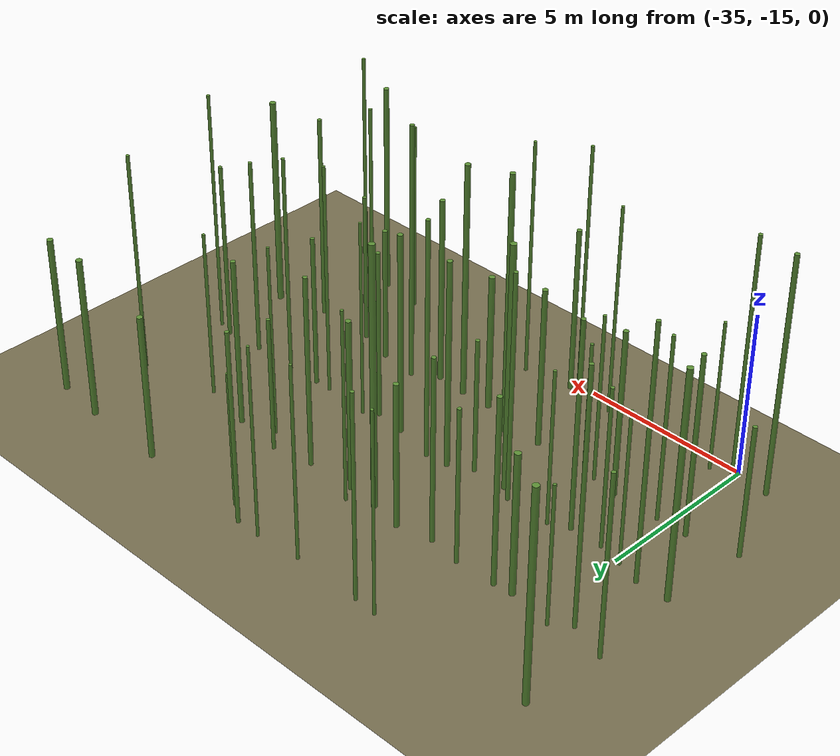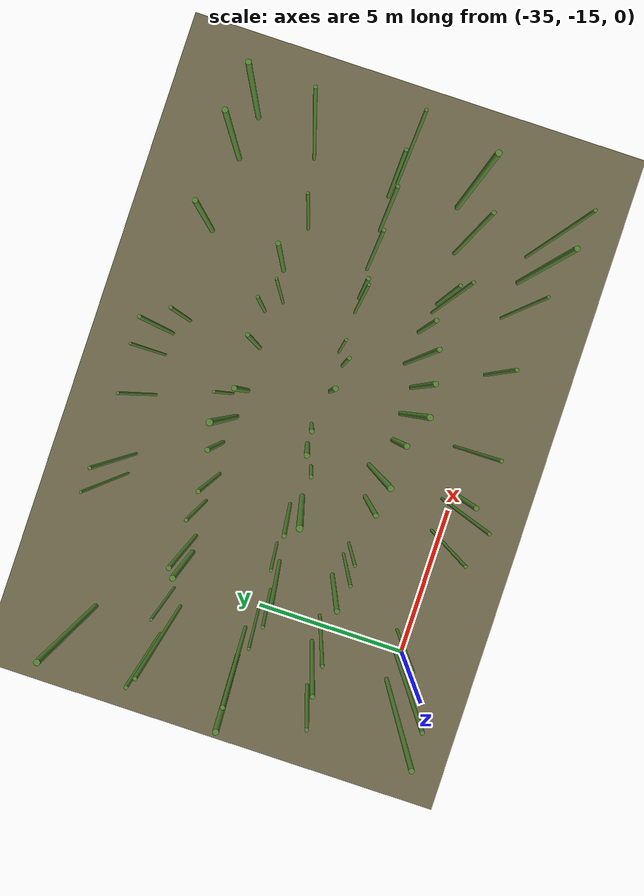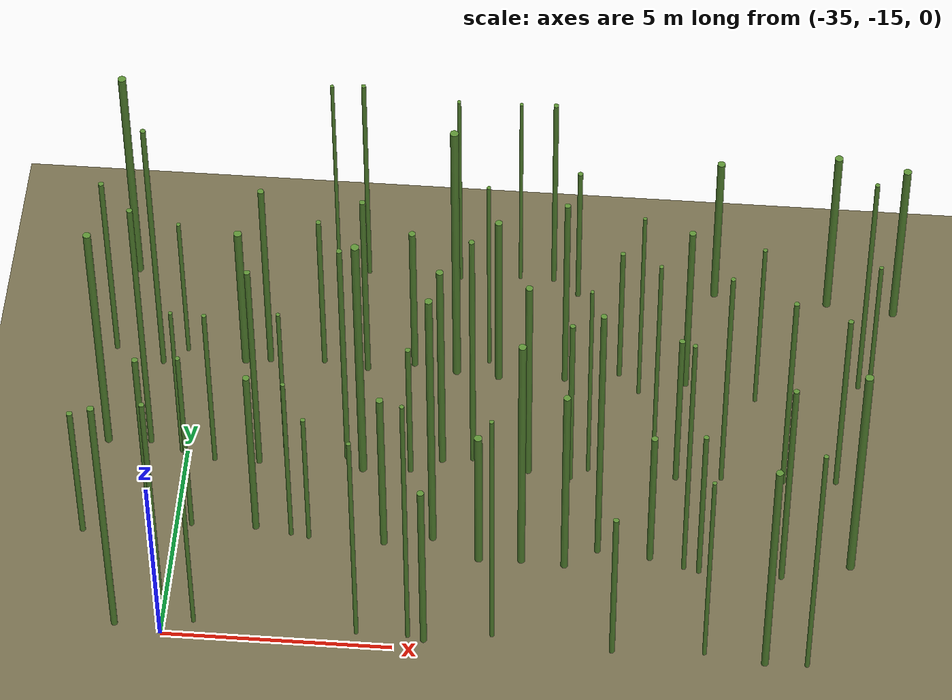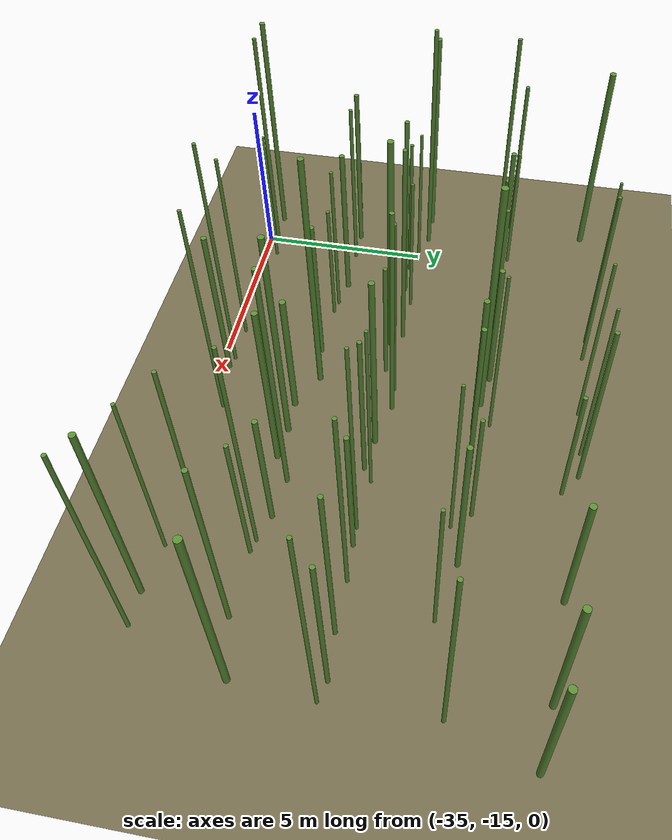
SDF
<sdf version="1.9">
 <world name="bamboo_field">
  <model name="ground_plane">
   <static>true</static>
   <link name="link">
    <collision name="collision">
     <geometry><plane><normal>0 0 1</normal><size>80.0 80.0</size></plane></geometry>
    </collision>
    <visual name="visual">
     <geometry><plane><normal>0 0 1</normal><size>80.0 80.0</size></plane></geometry>
     <material><diffuse>0.45 0.42 0.30 1</diffuse></material>
    </visual>
   </link>
  </model>
  <model name="bamboo_606">
   <static>true</static>
   <pose>-36.02686584645869 -14.805122999809392 3.670938135353289 0 0 0</pose>
   <link name="link">
    <collision name="collision">
     <geometry>
      <cylinder><radius>0.07266682732784249</radius><length>7.341876270706578</length></cylinder>
     </geometry>
    </collision>
    <visual name="visual">
     <geometry>
      <cylinder><radius>0.07266682732784249</radius><length>7.341876270706578</length></cylinder>
     </geometry>
     <material><diffuse>0.35 0.55 0.20 1</diffuse><specular>0.1 0.1 0.1 1</specular></material>
    </visual>
   </link>
  </model>
  <model name="bamboo_607">
   <static>true</static>
   <pose>-34.98482981029579 -14.731076083740685 3.735438843742495 0 0 0</pose>
   <link name="link">
    <collision name="collision">
     <geometry>
      <cylinder><radius>0.05764490038798628</radius><length>7.47087768748499</length></cylinder>
     </geometry>
    </collision>
    <visual name="visual">
     <geometry>
      <cylinder><radius>0.05764490038798628</radius><length>7.47087768748499</length></cylinder>
     </geometry>
     <material><diffuse>0.35 0.55 0.20 1</diffuse><specular>0.1 0.1 0.1 1</specular></material>
    </visual>
   </link>
  </model>
  <model name="bamboo_608">
   <static>true</static>
   <pose>-34.32998675403457 -14.618119244868057 2.3312116448579845 0 0 0</pose>
   <link name="link">
    <collision name="collision">
     <geometry>
      <cylinder><radius>0.04694841535385649</radius><length>4.662423289715969</length></cylinder>
     </geometry>
    </collision>
    <visual name="visual">
     <geometry>
      <cylinder><radius>0.04694841535385649</radius><length>4.662423289715969</length></cylinder>
     </geometry>
     <material><diffuse>0.35 0.55 0.20 1</diffuse><specular>0.1 0.1 0.1 1</specular></material>
    </visual>
   </link>
  </model>
  <model name="bamboo_611">
   <static>true</static>
   <pose>-30.79683528189015 -14.667964637078548 3.2590808497763097 0 0 0</pose>
   <link name="link">
    <collision name="collision">
     <geometry>
      <cylinder><radius>0.0480564570183769</radius><length>6.5181616995526195</length></cylinder>
     </geometry>
    </collision>
    <visual name="visual">
     <geometry>
      <cylinder><radius>0.0480564570183769</radius><length>6.5181616995526195</length></cylinder>
     </geometry>
     <material><diffuse>0.35 0.55 0.20 1</diffuse><specular>0.1 0.1 0.1 1</specular></material>
    </visual>
   </link>
  </model>
  <model name="bamboo_612">
   <static>true</static>
   <pose>-29.68235381993716 -14.674029854904838 3.9164766729691074 0 0 0</pose>
   <link name="link">
    <collision name="collision">
     <geometry>
      <cylinder><radius>0.049001876978814855</radius><length>7.832953345938215</length></cylinder>
     </geometry>
    </collision>
    <visual name="visual">
     <geometry>
      <cylinder><radius>0.049001876978814855</radius><length>7.832953345938215</length></cylinder>
     </geometry>
     <material><diffuse>0.35 0.55 0.20 1</diffuse><specular>0.1 0.1 0.1 1</specular></material>
    </visual>
   </link>
  </model>
  <model name="bamboo_613">
   <static>true</static>
   <pose>-29.334432119723694 -14.754110793406253 2.566909252811281 0 0 0</pose>
   <link name="link">
    <collision name="collision">
     <geometry>
      <cylinder><radius>0.0730872531314579</radius><length>5.133818505622562</length></cylinder>
     </geometry>
    </collision>
    <visual name="visual">
     <geometry>
      <cylinder><radius>0.0730872531314579</radius><length>5.133818505622562</length></cylinder>
     </geometry>
     <material><diffuse>0.35 0.55 0.20 1</diffuse><specular>0.1 0.1 0.1 1</specular></material>
    </visual>
   </link>
  </model>
  <model name="bamboo_614">
   <static>true</static>
   <pose>-27.876758642067685 -14.512321897357557 3.6607271494085616 0 0 0</pose>
   <link name="link">
    <collision name="collision">
     <geometry>
      <cylinder><radius>0.048528339199484814</radius><length>7.321454298817123</length></cylinder>
     </geometry>
    </collision>
    <visual name="visual">
     <geometry>
      <cylinder><radius>0.048528339199484814</radius><length>7.321454298817123</length></cylinder>
     </geometry>
     <material><diffuse>0.35 0.55 0.20 1</diffuse><specular>0.1 0.1 0.1 1</specular></material>
    </visual>
   </link>
  </model>
  <model name="bamboo_617">
   <static>true</static>
   <pose>-25.276530731536806 -14.73544471669724 2.299122387252912 0 0 0</pose>
   <link name="link">
    <collision name="collision">
     <geometry>
      <cylinder><radius>0.06098975063358031</radius><length>4.598244774505824</length></cylinder>
     </geometry>
    </collision>
    <visual name="visual">
     <geometry>
      <cylinder><radius>0.06098975063358031</radius><length>4.598244774505824</length></cylinder>
     </geometry>
     <material><diffuse>0.35 0.55 0.20 1</diffuse><specular>0.1 0.1 0.1 1</specular></material>
    </visual>
   </link>
  </model>
  <model name="bamboo_618">
   <static>true</static>
   <pose>-23.29326298497138 -14.646120890962576 2.9644818702249616 0 0 0</pose>
   <link name="link">
    <collision name="collision">
     <geometry>
      <cylinder><radius>0.04587582032873852</radius><length>5.928963740449923</length></cylinder>
     </geometry>
    </collision>
    <visual name="visual">
     <geometry>
      <cylinder><radius>0.04587582032873852</radius><length>5.928963740449923</length></cylinder>
     </geometry>
     <material><diffuse>0.35 0.55 0.20 1</diffuse><specular>0.1 0.1 0.1 1</specular></material>
    </visual>
   </link>
  </model>
  <model name="bamboo_619">
   <static>true</static>
   <pose>-21.988053501291482 -14.809288931365728 3.2984634702130675 0 0 0</pose>
   <link name="link">
    <collision name="collision">
     <geometry>
      <cylinder><radius>0.07874352115339017</radius><length>6.596926940426135</length></cylinder>
     </geometry>
    </collision>
    <visual name="visual">
     <geometry>
      <cylinder><radius>0.07874352115339017</radius><length>6.596926940426135</length></cylinder>
     </geometry>
     <material><diffuse>0.35 0.55 0.20 1</diffuse><specular>0.1 0.1 0.1 1</specular></material>
    </visual>
   </link>
  </model>
  <model name="bamboo_620">
   <static>true</static>
   <pose>-21.083420239114307 -14.801687599200536 3.6046003920156275 0 0 0</pose>
   <link name="link">
    <collision name="collision">
     <geometry>
      <cylinder><radius>0.05147431281895251</radius><length>7.209200784031255</length></cylinder>
     </geometry>
    </collision>
    <visual name="visual">
     <geometry>
      <cylinder><radius>0.05147431281895251</radius><length>7.209200784031255</length></cylinder>
     </geometry>
     <material><diffuse>0.35 0.55 0.20 1</diffuse><specular>0.1 0.1 0.1 1</specular></material>
    </visual>
   </link>
  </model>
  <model name="bamboo_673">
   <static>true</static>
   <pose>-37.048695280711534 -12.337944657791976 2.0182651991526663 0 0 0</pose>
   <link name="link">
    <collision name="collision">
     <geometry>
      <cylinder><radius>0.06385335352257285</radius><length>4.036530398305333</length></cylinder>
     </geometry>
    </collision>
    <visual name="visual">
     <geometry>
      <cylinder><radius>0.06385335352257285</radius><length>4.036530398305333</length></cylinder>
     </geometry>
     <material><diffuse>0.35 0.55 0.20 1</diffuse><specular>0.1 0.1 0.1 1</specular></material>
    </visual>
   </link>
  </model>
  <model name="bamboo_674">
   <static>true</static>
   <pose>-35.59376764525032 -12.027007989021284 2.7895041592403667 0 0 0</pose>
   <link name="link">
    <collision name="collision">
     <geometry>
      <cylinder><radius>0.06802771793198077</radius><length>5.579008318480733</length></cylinder>
     </geometry>
    </collision>
    <visual name="visual">
     <geometry>
      <cylinder><radius>0.06802771793198077</radius><length>5.579008318480733</length></cylinder>
     </geometry>
     <material><diffuse>0.35 0.55 0.20 1</diffuse><specular>0.1 0.1 0.1 1</specular></material>
    </visual>
   </link>
  </model>
  <model name="bamboo_675">
   <static>true</static>
   <pose>-34.68447371358325 -12.007813681040018 2.844478765507385 0 0 0</pose>
   <link name="link">
    <collision name="collision">
     <geometry>
      <cylinder><radius>0.05314901377231245</radius><length>5.68895753101477</length></cylinder>
     </geometry>
    </collision>
    <visual name="visual">
     <geometry>
      <cylinder><radius>0.05314901377231245</radius><length>5.68895753101477</length></cylinder>
     </geometry>
     <material><diffuse>0.35 0.55 0.20 1</diffuse><specular>0.1 0.1 0.1 1</specular></material>
    </visual>
   </link>
  </model>
  <model name="bamboo_676">
   <static>true</static>
   <pose>-33.26813639817272 -11.976824432524321 2.569353709346906 0 0 0</pose>
   <link name="link">
    <collision name="collision">
     <geometry>
      <cylinder><radius>0.07423201451892597</radius><length>5.138707418693812</length></cylinder>
     </geometry>
    </collision>
    <visual name="visual">
     <geometry>
      <cylinder><radius>0.07423201451892597</radius><length>5.138707418693812</length></cylinder>
     </geometry>
     <material><diffuse>0.35 0.55 0.20 1</diffuse><specular>0.1 0.1 0.1 1</specular></material>
    </visual>
   </link>
  </model>
  <model name="bamboo_677">
   <static>true</static>
   <pose>-32.477198775375385 -12.110579897161886 2.5791905985825707 0 0 0</pose>
   <link name="link">
    <collision name="collision">
     <geometry>
      <cylinder><radius>0.04912035895013214</radius><length>5.158381197165141</length></cylinder>
     </geometry>
    </collision>
    <visual name="visual">
     <geometry>
      <cylinder><radius>0.04912035895013214</radius><length>5.158381197165141</length></cylinder>
     </geometry>
     <material><diffuse>0.35 0.55 0.20 1</diffuse><specular>0.1 0.1 0.1 1</specular></material>
    </visual>
   </link>
  </model>
  <model name="bamboo_678">
   <static>true</static>
   <pose>-32.07942756932241 -12.16851095975181 2.038790794493993 0 0 0</pose>
   <link name="link">
    <collision name="collision">
     <geometry>
      <cylinder><radius>0.04938947212720056</radius><length>4.077581588987986</length></cylinder>
     </geometry>
    </collision>
    <visual name="visual">
     <geometry>
      <cylinder><radius>0.04938947212720056</radius><length>4.077581588987986</length></cylinder>
     </geometry>
     <material><diffuse>0.35 0.55 0.20 1</diffuse><specular>0.1 0.1 0.1 1</specular></material>
    </visual>
   </link>
  </model>
  <model name="bamboo_679">
   <static>true</static>
   <pose>-30.426638341878068 -12.197484799656625 2.4656209959119106 0 0 0</pose>
   <link name="link">
    <collision name="collision">
     <geometry>
      <cylinder><radius>0.07635535352237674</radius><length>4.931241991823821</length></cylinder>
     </geometry>
    </collision>
    <visual name="visual">
     <geometry>
      <cylinder><radius>0.07635535352237674</radius><length>4.931241991823821</length></cylinder>
     </geometry>
     <material><diffuse>0.35 0.55 0.20 1</diffuse><specular>0.1 0.1 0.1 1</specular></material>
    </visual>
   </link>
  </model>
  <model name="bamboo_680">
   <static>true</static>
   <pose>-29.37077265887646 -11.98899318690794 3.995926892331199 0 0 0</pose>
   <link name="link">
    <collision name="collision">
     <geometry>
      <cylinder><radius>0.0799731175968035</radius><length>7.991853784662398</length></cylinder>
     </geometry>
    </collision>
    <visual name="visual">
     <geometry>
      <cylinder><radius>0.0799731175968035</radius><length>7.991853784662398</length></cylinder>
     </geometry>
     <material><diffuse>0.35 0.55 0.20 1</diffuse><specular>0.1 0.1 0.1 1</specular></material>
    </visual>
   </link>
  </model>
  <model name="bamboo_681">
   <static>true</static>
   <pose>-28.320295289605763 -12.493021200569308 2.1120766888037856 0 0 0</pose>
   <link name="link">
    <collision name="collision">
     <geometry>
      <cylinder><radius>0.0875822020866304</radius><length>4.224153377607571</length></cylinder>
     </geometry>
    </collision>
    <visual name="visual">
     <geometry>
      <cylinder><radius>0.0875822020866304</radius><length>4.224153377607571</length></cylinder>
     </geometry>
     <material><diffuse>0.35 0.55 0.20 1</diffuse><specular>0.1 0.1 0.1 1</specular></material>
    </visual>
   </link>
  </model>
  <model name="bamboo_682">
   <static>true</static>
   <pose>-27.39541718328901 -12.457617397563608 3.6345014479991407 0 0 0</pose>
   <link name="link">
    <collision name="collision">
     <geometry>
      <cylinder><radius>0.08207696439701298</radius><length>7.269002895998281</length></cylinder>
     </geometry>
    </collision>
    <visual name="visual">
     <geometry>
      <cylinder><radius>0.08207696439701298</radius><length>7.269002895998281</length></cylinder>
     </geometry>
     <material><diffuse>0.35 0.55 0.20 1</diffuse><specular>0.1 0.1 0.1 1</specular></material>
    </visual>
   </link>
  </model>
  <model name="bamboo_683">
   <static>true</static>
   <pose>-26.451602039337107 -12.519533282794455 2.88592188428584 0 0 0</pose>
   <link name="link">
    <collision name="collision">
     <geometry>
      <cylinder><radius>0.07856126665136673</radius><length>5.77184376857168</length></cylinder>
     </geometry>
    </collision>
    <visual name="visual">
     <geometry>
      <cylinder><radius>0.07856126665136673</radius><length>5.77184376857168</length></cylinder>
     </geometry>
     <material><diffuse>0.35 0.55 0.20 1</diffuse><specular>0.1 0.1 0.1 1</specular></material>
    </visual>
   </link>
  </model>
  <model name="bamboo_684">
   <static>true</static>
   <pose>-25.752623612505595 -12.06598086285315 3.964231702811228 0 0 0</pose>
   <link name="link">
    <collision name="collision">
     <geometry>
      <cylinder><radius>0.0660569560028642</radius><length>7.928463405622456</length></cylinder>
     </geometry>
    </collision>
    <visual name="visual">
     <geometry>
      <cylinder><radius>0.0660569560028642</radius><length>7.928463405622456</length></cylinder>
     </geometry>
     <material><diffuse>0.35 0.55 0.20 1</diffuse><specular>0.1 0.1 0.1 1</specular></material>
    </visual>
   </link>
  </model>
  <model name="bamboo_685">
   <static>true</static>
   <pose>-24.60256310122346 -12.17834210985139 2.084371831189462 0 0 0</pose>
   <link name="link">
    <collision name="collision">
     <geometry>
      <cylinder><radius>0.07145821270653496</radius><length>4.168743662378924</length></cylinder>
     </geometry>
    </collision>
    <visual name="visual">
     <geometry>
      <cylinder><radius>0.07145821270653496</radius><length>4.168743662378924</length></cylinder>
     </geometry>
     <material><diffuse>0.35 0.55 0.20 1</diffuse><specular>0.1 0.1 0.1 1</specular></material>
    </visual>
   </link>
  </model>
  <model name="bamboo_686">
   <static>true</static>
   <pose>-23.85287228560727 -12.390538712555076 3.7750391520870847 0 0 0</pose>
   <link name="link">
    <collision name="collision">
     <geometry>
      <cylinder><radius>0.04993618159011999</radius><length>7.5500783041741695</length></cylinder>
     </geometry>
    </collision>
    <visual name="visual">
     <geometry>
      <cylinder><radius>0.04993618159011999</radius><length>7.5500783041741695</length></cylinder>
     </geometry>
     <material><diffuse>0.35 0.55 0.20 1</diffuse><specular>0.1 0.1 0.1 1</specular></material>
    </visual>
   </link>
  </model>
  <model name="bamboo_687">
   <static>true</static>
   <pose>-23.518991237218582 -12.45923577248613 2.334720712816572 0 0 0</pose>
   <link name="link">
    <collision name="collision">
     <geometry>
      <cylinder><radius>0.05622567438150484</radius><length>4.669441425633144</length></cylinder>
     </geometry>
    </collision>
    <visual name="visual">
     <geometry>
      <cylinder><radius>0.05622567438150484</radius><length>4.669441425633144</length></cylinder>
     </geometry>
     <material><diffuse>0.35 0.55 0.20 1</diffuse><specular>0.1 0.1 0.1 1</specular></material>
    </visual>
   </link>
  </model>
  <model name="bamboo_688">
   <static>true</static>
   <pose>-21.71982734390684 -12.480354554968875 3.192424567863225 0 0 0</pose>
   <link name="link">
    <collision name="collision">
     <geometry><cylinder><radius>0.0637635339380825</radius><length>6.38484913572645</length></cylinder></geometry>
    </collision>
    <visual name="visual">
     <geometry><cylinder><radius>0.0637635339380825</radius><length>6.38484913572645</length></cylinder></geometry>
     <material><diffuse>0.35 0.55 0.20 1</diffuse><specular>0.1 0.1 0.1 1</specular></material>
    </visual>
   </link>
  </model>
  <model name="bamboo_689">
   <static>true</static>
   <pose>-20.227426490238383 -12.091788059240104 3.2502646604188135 0 0 0</pose>
   <link name="link">
    <collision name="collision">
     <geometry>
      <cylinder><radius>0.08984865514917677</radius><length>6.500529320837627</length></cylinder>
     </geometry>
    </collision>
    <visual name="visual">
     <geometry>
      <cylinder><radius>0.08984865514917677</radius><length>6.500529320837627</length></cylinder>
     </geometry>
     <material><diffuse>0.35 0.55 0.20 1</diffuse><specular>0.1 0.1 0.1 1</specular></material>
    </visual>
   </link>
  </model>
  <model name="bamboo_742">
   <static>true</static>
   <pose>-36.81419549120157 -9.800698102340288 3.4541590665203827 0 0 0</pose>
   <link name="link">
    <collision name="collision">
     <geometry>
      <cylinder><radius>0.08398190608081327</radius><length>6.9083181330407655</length></cylinder>
     </geometry>
    </collision>
    <visual name="visual">
     <geometry>
      <cylinder><radius>0.08398190608081327</radius><length>6.9083181330407655</length></cylinder>
     </geometry>
     <material><diffuse>0.35 0.55 0.20 1</diffuse><specular>0.1 0.1 0.1 1</specular></material>
    </visual>
   </link>
  </model>
  <model name="bamboo_743">
   <static>true</static>
   <pose>-35.858492872638465 -9.76351541112523 3.8675370487823857 0 0 0</pose>
   <link name="link">
    <collision name="collision">
     <geometry>
      <cylinder><radius>0.0621502243524826</radius><length>7.735074097564771</length></cylinder>
     </geometry>
    </collision>
    <visual name="visual">
     <geometry>
      <cylinder><radius>0.0621502243524826</radius><length>7.735074097564771</length></cylinder>
     </geometry>
     <material><diffuse>0.35 0.55 0.20 1</diffuse><specular>0.1 0.1 0.1 1</specular></material>
    </visual>
   </link>
  </model>
  <model name="bamboo_744">
   <static>true</static>
   <pose>-35.14115223336644 -9.988403314047973 2.3694929931491346 0 0 0</pose>
   <link name="link">
    <collision name="collision">
     <geometry>
      <cylinder><radius>0.045338571642170054</radius><length>4.738985986298269</length></cylinder>
     </geometry>
    </collision>
    <visual name="visual">
     <geometry>
      <cylinder><radius>0.045338571642170054</radius><length>4.738985986298269</length></cylinder>
     </geometry>
     <material><diffuse>0.35 0.55 0.20 1</diffuse><specular>0.1 0.1 0.1 1</specular></material>
    </visual>
   </link>
  </model>
  <model name="bamboo_745">
   <static>true</static>
   <pose>-34.38695590715287 -10.165307498242104 2.4643650685386715 0 0 0</pose>
   <link name="link">
    <collision name="collision">
     <geometry>
      <cylinder><radius>0.05154556743665065</radius><length>4.928730137077343</length></cylinder>
     </geometry>
    </collision>
    <visual name="visual">
     <geometry>
      <cylinder><radius>0.05154556743665065</radius><length>4.928730137077343</length></cylinder>
     </geometry>
     <material><diffuse>0.35 0.55 0.20 1</diffuse><specular>0.1 0.1 0.1 1</specular></material>
    </visual>
   </link>
  </model>
  <model name="bamboo_746">
   <static>true</static>
   <pose>-33.394450523300975 -10.15501885162494 3.2094235192055027 0 0 0</pose>
   <link name="link">
    <collision name="collision">
     <geometry>
      <cylinder><radius>0.06511622937252307</radius><length>6.4188470384110055</length></cylinder>
     </geometry>
    </collision>
    <visual name="visual">
     <geometry>
      <cylinder><radius>0.06511622937252307</radius><length>6.4188470384110055</length></cylinder>
     </geometry>
     <material><diffuse>0.35 0.55 0.20 1</diffuse><specular>0.1 0.1 0.1 1</specular></material>
    </visual>
   </link>
  </model>
  <model name="bamboo_747">
   <static>true</static>
   <pose>-32.82945145263947 -9.881613234526526 2.3865196589570203 0 0 0</pose>
   <link name="link">
    <collision name="collision">
     <geometry>
      <cylinder><radius>0.04687563611708073</radius><length>4.773039317914041</length></cylinder>
     </geometry>
    </collision>
    <visual name="visual">
     <geometry>
      <cylinder><radius>0.04687563611708073</radius><length>4.773039317914041</length></cylinder>
     </geometry>
     <material><diffuse>0.35 0.55 0.20 1</diffuse><specular>0.1 0.1 0.1 1</specular></material>
    </visual>
   </link>
  </model>
  <model name="bamboo_748">
   <static>true</static>
   <pose>-31.454236043493623 -9.88634681960835 3.4847333233257993 0 0 0</pose>
   <link name="link">
    <collision name="collision">
     <geometry>
      <cylinder><radius>0.06065220110958599</radius><length>6.969466646651599</length></cylinder>
     </geometry>
    </collision>
    <visual name="visual">
     <geometry>
      <cylinder><radius>0.06065220110958599</radius><length>6.969466646651599</length></cylinder>
     </geometry>
     <material><diffuse>0.35 0.55 0.20 1</diffuse><specular>0.1 0.1 0.1 1</specular></material>
    </visual>
   </link>
  </model>
  <model name="bamboo_749">
   <static>true</static>
   <pose>-31.076591877066132 -10.189363493653458 3.7342580052772067 0 0 0</pose>
   <link name="link">
    <collision name="collision">
     <geometry>
      <cylinder><radius>0.0892813819793184</radius><length>7.4685160105544135</length></cylinder>
     </geometry>
    </collision>
    <visual name="visual">
     <geometry>
      <cylinder><radius>0.0892813819793184</radius><length>7.4685160105544135</length></cylinder>
     </geometry>
     <material><diffuse>0.35 0.55 0.20 1</diffuse><specular>0.1 0.1 0.1 1</specular></material>
    </visual>
   </link>
  </model>
  <model name="bamboo_750">
   <static>true</static>
   <pose>-30.02180168831729 -10.150528514287705 2.0836525501002363 0 0 0</pose>
   <link name="link">
    <collision name="collision">
     <geometry>
      <cylinder><radius>0.060243338412126424</radius><length>4.167305100200473</length></cylinder>
     </geometry>
    </collision>
    <visual name="visual">
     <geometry>
      <cylinder><radius>0.060243338412126424</radius><length>4.167305100200473</length></cylinder>
     </geometry>
     <material><diffuse>0.35 0.55 0.20 1</diffuse><specular>0.1 0.1 0.1 1</specular></material>
    </visual>
   </link>
  </model>
  <model name="bamboo_751">
   <static>true</static>
   <pose>-29.34371356549043 -9.80374235211442 3.1876116027855783 0 0 0</pose>
   <link name="link">
    <collision name="collision">
     <geometry>
      <cylinder><radius>0.07712339273539723</radius><length>6.375223205571157</length></cylinder>
     </geometry>
    </collision>
    <visual name="visual">
     <geometry>
      <cylinder><radius>0.07712339273539723</radius><length>6.375223205571157</length></cylinder>
     </geometry>
     <material><diffuse>0.35 0.55 0.20 1</diffuse><specular>0.1 0.1 0.1 1</specular></material>
    </visual>
   </link>
  </model>
  <model name="bamboo_752">
   <static>true</static>
   <pose>-28.666915851548534 -9.719704972349456 3.6540202033186997 0 0 0</pose>
   <link name="link">
    <collision name="collision">
     <geometry>
      <cylinder><radius>0.0625804796281831</radius><length>7.308040406637399</length></cylinder>
     </geometry>
    </collision>
    <visual name="visual">
     <geometry>
      <cylinder><radius>0.0625804796281831</radius><length>7.308040406637399</length></cylinder>
     </geometry>
     <material><diffuse>0.35 0.55 0.20 1</diffuse><specular>0.1 0.1 0.1 1</specular></material>
    </visual>
   </link>
  </model>
  <model name="bamboo_753">
   <static>true</static>
   <pose>-27.42783725355354 -9.975336445251386 3.1154018996268187 0 0 0</pose>
   <link name="link">
    <collision name="collision">
     <geometry>
      <cylinder><radius>0.07675850407751336</radius><length>6.230803799253637</length></cylinder>
     </geometry>
    </collision>
    <visual name="visual">
     <geometry>
      <cylinder><radius>0.07675850407751336</radius><length>6.230803799253637</length></cylinder>
     </geometry>
     <material><diffuse>0.35 0.55 0.20 1</diffuse><specular>0.1 0.1 0.1 1</specular></material>
    </visual>
   </link>
  </model>
  <model name="bamboo_754">
   <static>true</static>
   <pose>-26.490073046723364 -10.093847417641516 2.609108295644477 0 0 0</pose>
   <link name="link">
    <collision name="collision">
     <geometry>
      <cylinder><radius>0.05990199457272796</radius><length>5.218216591288954</length></cylinder>
     </geometry>
    </collision>
    <visual name="visual">
     <geometry>
      <cylinder><radius>0.05990199457272796</radius><length>5.218216591288954</length></cylinder>
     </geometry>
     <material><diffuse>0.35 0.55 0.20 1</diffuse><specular>0.1 0.1 0.1 1</specular></material>
    </visual>
   </link>
  </model>
  <model name="bamboo_755">
   <static>true</static>
   <pose>-26.100855145924648 -9.835864979317643 3.033939300532276 0 0 0</pose>
   <link name="link">
    <collision name="collision">
     <geometry>
      <cylinder><radius>0.04272733334077632</radius><length>6.067878601064552</length></cylinder>
     </geometry>
    </collision>
    <visual name="visual">
     <geometry>
      <cylinder><radius>0.04272733334077632</radius><length>6.067878601064552</length></cylinder>
     </geometry>
     <material><diffuse>0.35 0.55 0.20 1</diffuse><specular>0.1 0.1 0.1 1</specular></material>
    </visual>
   </link>
  </model>
  <model name="bamboo_756">
   <static>true</static>
   <pose>-24.66325392354588 -9.929510533128434 3.5574622837520797 0 0 0</pose>
   <link name="link">
    <collision name="collision">
     <geometry>
      <cylinder><radius>0.04565857931217975</radius><length>7.1149245675041595</length></cylinder>
     </geometry>
    </collision>
    <visual name="visual">
     <geometry>
      <cylinder><radius>0.04565857931217975</radius><length>7.1149245675041595</length></cylinder>
     </geometry>
     <material><diffuse>0.35 0.55 0.20 1</diffuse><specular>0.1 0.1 0.1 1</specular></material>
    </visual>
   </link>
  </model>
  <model name="bamboo_757">
   <static>true</static>
   <pose>-24.152400141556445 -9.91794635850188 2.357757157887231 0 0 0</pose>
   <link name="link">
    <collision name="collision">
     <geometry>
      <cylinder><radius>0.06254429274235371</radius><length>4.715514315774462</length></cylinder>
     </geometry>
    </collision>
    <visual name="visual">
     <geometry>
      <cylinder><radius>0.06254429274235371</radius><length>4.715514315774462</length></cylinder>
     </geometry>
     <material><diffuse>0.35 0.55 0.20 1</diffuse><specular>0.1 0.1 0.1 1</specular></material>
    </visual>
   </link>
  </model>
  <model name="bamboo_758">
   <static>true</static>
   <pose>-23.149834448271754 -9.859250076683285 3.383434856661803 0 0 0</pose>
   <link name="link">
    <collision name="collision">
     <geometry>
      <cylinder><radius>0.05250411470386191</radius><length>6.766869713323606</length></cylinder>
     </geometry>
    </collision>
    <visual name="visual">
     <geometry>
      <cylinder><radius>0.05250411470386191</radius><length>6.766869713323606</length></cylinder>
     </geometry>
     <material><diffuse>0.35 0.55 0.20 1</diffuse><specular>0.1 0.1 0.1 1</specular></material>
    </visual>
   </link>
  </model>
  <model name="bamboo_759">
   <static>true</static>
   <pose>-21.78297114697538 -9.863043816450373 3.0476346121322977 0 0 0</pose>
   <link name="link">
    <collision name="collision">
     <geometry>
      <cylinder><radius>0.058147169457862725</radius><length>6.095269224264595</length></cylinder>
     </geometry>
    </collision>
    <visual name="visual">
     <geometry>
      <cylinder><radius>0.058147169457862725</radius><length>6.095269224264595</length></cylinder>
     </geometry>
     <material><diffuse>0.35 0.55 0.20 1</diffuse><specular>0.1 0.1 0.1 1</specular></material>
    </visual>
   </link>
  </model>
  <model name="bamboo_760">
   <static>true</static>
   <pose>-20.609383501715605 -9.778213487240798 2.7612140185222938 0 0 0</pose>
   <link name="link">
    <collision name="collision">
     <geometry>
      <cylinder><radius>0.05893393157062898</radius><length>5.5224280370445875</length></cylinder>
     </geometry>
    </collision>
    <visual name="visual">
     <geometry>
      <cylinder><radius>0.05893393157062898</radius><length>5.5224280370445875</length></cylinder>
     </geometry>
     <material><diffuse>0.35 0.55 0.20 1</diffuse><specular>0.1 0.1 0.1 1</specular></material>
    </visual>
   </link>
  </model>
  <model name="bamboo_761">
   <static>true</static>
   <pose>-20.095762361687726 -9.918357190900554 3.7376370749564076 0 0 0</pose>
   <link name="link">
    <collision name="collision">
     <geometry>
      <cylinder><radius>0.04750448672552559</radius><length>7.475274149912815</length></cylinder>
     </geometry>
    </collision>
    <visual name="visual">
     <geometry>
      <cylinder><radius>0.04750448672552559</radius><length>7.475274149912815</length></cylinder>
     </geometry>
     <material><diffuse>0.35 0.55 0.20 1</diffuse><specular>0.1 0.1 0.1 1</specular></material>
    </visual>
   </link>
  </model>
  <model name="bamboo_814">
   <static>true</static>
   <pose>-36.96841684842221 -7.111011184474106 2.7631300901649896 0 0 0</pose>
   <link name="link">
    <collision name="collision">
     <geometry>
      <cylinder><radius>0.05913948074207926</radius><length>5.526260180329979</length></cylinder>
     </geometry>
    </collision>
    <visual name="visual">
     <geometry>
      <cylinder><radius>0.05913948074207926</radius><length>5.526260180329979</length></cylinder>
     </geometry>
     <material><diffuse>0.35 0.55 0.20 1</diffuse><specular>0.1 0.1 0.1 1</specular></material>
    </visual>
   </link>
  </model>
  <model name="bamboo_815">
   <static>true</static>
   <pose>-35.872077554109005 -7.466765373067266 3.848964085583208 0 0 0</pose>
   <link name="link">
    <collision name="collision">
     <geometry>
      <cylinder><radius>0.05922975288455473</radius><length>7.697928171166416</length></cylinder>
     </geometry>
    </collision>
    <visual name="visual">
     <geometry>
      <cylinder><radius>0.05922975288455473</radius><length>7.697928171166416</length></cylinder>
     </geometry>
     <material><diffuse>0.35 0.55 0.20 1</diffuse><specular>0.1 0.1 0.1 1</specular></material>
    </visual>
   </link>
  </model>
  <model name="bamboo_816">
   <static>true</static>
   <pose>-35.350073558050994 -7.069815014039489 2.1434919930754486 0 0 0</pose>
   <link name="link">
    <collision name="collision">
     <geometry>
      <cylinder><radius>0.046713872407228775</radius><length>4.286983986150897</length></cylinder>
     </geometry>
    </collision>
    <visual name="visual">
     <geometry>
      <cylinder><radius>0.046713872407228775</radius><length>4.286983986150897</length></cylinder>
     </geometry>
     <material><diffuse>0.35 0.55 0.20 1</diffuse><specular>0.1 0.1 0.1 1</specular></material>
    </visual>
   </link>
  </model>
  <model name="bamboo_817">
   <static>true</static>
   <pose>-34.01681845313272 -7.283653650298591 2.169326888579432 0 0 0</pose>
   <link name="link">
    <collision name="collision">
     <geometry>
      <cylinder><radius>0.08951088210037937</radius><length>4.338653777158864</length></cylinder>
     </geometry>
    </collision>
    <visual name="visual">
     <geometry>
      <cylinder><radius>0.08951088210037937</radius><length>4.338653777158864</length></cylinder>
     </geometry>
     <material><diffuse>0.35 0.55 0.20 1</diffuse><specular>0.1 0.1 0.1 1</specular></material>
    </visual>
   </link>
  </model>
  <model name="bamboo_818">
   <static>true</static>
   <pose>-33.45811885711996 -7.218162036591791 2.851408341873414 0 0 0</pose>
   <link name="link">
    <collision name="collision">
     <geometry>
      <cylinder><radius>0.07022147563483976</radius><length>5.702816683746828</length></cylinder>
     </geometry>
    </collision>
    <visual name="visual">
     <geometry>
      <cylinder><radius>0.07022147563483976</radius><length>5.702816683746828</length></cylinder>
     </geometry>
     <material><diffuse>0.35 0.55 0.20 1</diffuse><specular>0.1 0.1 0.1 1</specular></material>
    </visual>
   </link>
  </model>
  <model name="bamboo_819">
   <static>true</static>
   <pose>-32.23995572880987 -7.170195526148234 2.371582067381916 0 0 0</pose>
   <link name="link">
    <collision name="collision">
     <geometry><cylinder><radius>0.057765361527257</radius><length>4.743164134763832</length></cylinder></geometry>
    </collision>
    <visual name="visual">
     <geometry><cylinder><radius>0.057765361527257</radius><length>4.743164134763832</length></cylinder></geometry>
     <material><diffuse>0.35 0.55 0.20 1</diffuse><specular>0.1 0.1 0.1 1</specular></material>
    </visual>
   </link>
  </model>
  <model name="bamboo_820">
   <static>true</static>
   <pose>-31.242119072011366 -7.317873459016287 2.821675627329416 0 0 0</pose>
   <link name="link">
    <collision name="collision">
     <geometry><cylinder><radius>0.065086440246273</radius><length>5.643351254658832</length></cylinder></geometry>
    </collision>
    <visual name="visual">
     <geometry><cylinder><radius>0.065086440246273</radius><length>5.643351254658832</length></cylinder></geometry>
     <material><diffuse>0.35 0.55 0.20 1</diffuse><specular>0.1 0.1 0.1 1</specular></material>
    </visual>
   </link>
  </model>
  <model name="bamboo_821">
   <static>true</static>
   <pose>-30.196069038405405 -7.091404391289101 2.2263287392298694 0 0 0</pose>
   <link name="link">
    <collision name="collision">
     <geometry>
      <cylinder><radius>0.07524412712774373</radius><length>4.452657478459739</length></cylinder>
     </geometry>
    </collision>
    <visual name="visual">
     <geometry>
      <cylinder><radius>0.07524412712774373</radius><length>4.452657478459739</length></cylinder>
     </geometry>
     <material><diffuse>0.35 0.55 0.20 1</diffuse><specular>0.1 0.1 0.1 1</specular></material>
    </visual>
   </link>
  </model>
  <model name="bamboo_822">
   <static>true</static>
   <pose>-29.231098210450007 -7.249297047572029 3.9673367552545997 0 0 0</pose>
   <link name="link">
    <collision name="collision">
     <geometry>
      <cylinder><radius>0.08917895490651974</radius><length>7.9346735105091994</length></cylinder>
     </geometry>
    </collision>
    <visual name="visual">
     <geometry>
      <cylinder><radius>0.08917895490651974</radius><length>7.9346735105091994</length></cylinder>
     </geometry>
     <material><diffuse>0.35 0.55 0.20 1</diffuse><specular>0.1 0.1 0.1 1</specular></material>
    </visual>
   </link>
  </model>
  <model name="bamboo_823">
   <static>true</static>
   <pose>-28.525832964279513 -6.902464743822726 2.9449031446972915 0 0 0</pose>
   <link name="link">
    <collision name="collision">
     <geometry>
      <cylinder><radius>0.04442231753663395</radius><length>5.889806289394583</length></cylinder>
     </geometry>
    </collision>
    <visual name="visual">
     <geometry>
      <cylinder><radius>0.04442231753663395</radius><length>5.889806289394583</length></cylinder>
     </geometry>
     <material><diffuse>0.35 0.55 0.20 1</diffuse><specular>0.1 0.1 0.1 1</specular></material>
    </visual>
   </link>
  </model>
  <model name="bamboo_824">
   <static>true</static>
   <pose>-28.276838483896686 -7.334270156991237 2.624999442890869 0 0 0</pose>
   <link name="link">
    <collision name="collision">
     <geometry>
      <cylinder><radius>0.07990491203204857</radius><length>5.249998885781738</length></cylinder>
     </geometry>
    </collision>
    <visual name="visual">
     <geometry>
      <cylinder><radius>0.07990491203204857</radius><length>5.249998885781738</length></cylinder>
     </geometry>
     <material><diffuse>0.35 0.55 0.20 1</diffuse><specular>0.1 0.1 0.1 1</specular></material>
    </visual>
   </link>
  </model>
  <model name="bamboo_825">
   <static>true</static>
   <pose>-26.78869943788435 -7.280041201688723 2.9384647842342453 0 0 0</pose>
   <link name="link">
    <collision name="collision">
     <geometry>
      <cylinder><radius>0.06563315551953579</radius><length>5.876929568468491</length></cylinder>
     </geometry>
    </collision>
    <visual name="visual">
     <geometry>
      <cylinder><radius>0.06563315551953579</radius><length>5.876929568468491</length></cylinder>
     </geometry>
     <material><diffuse>0.35 0.55 0.20 1</diffuse><specular>0.1 0.1 0.1 1</specular></material>
    </visual>
   </link>
  </model>
  <model name="bamboo_826">
   <static>true</static>
   <pose>-25.57213193886224 -7.05015478112728 2.0706524803497066 0 0 0</pose>
   <link name="link">
    <collision name="collision">
     <geometry>
      <cylinder><radius>0.054460422161038274</radius><length>4.141304960699413</length></cylinder>
     </geometry>
    </collision>
    <visual name="visual">
     <geometry>
      <cylinder><radius>0.054460422161038274</radius><length>4.141304960699413</length></cylinder>
     </geometry>
     <material><diffuse>0.35 0.55 0.20 1</diffuse><specular>0.1 0.1 0.1 1</specular></material>
    </visual>
   </link>
  </model>
  <model name="bamboo_827">
   <static>true</static>
   <pose>-25.108992945802655 -7.538618557338912 2.946321063908057 0 0 0</pose>
   <link name="link">
    <collision name="collision">
     <geometry>
      <cylinder><radius>0.043070888157673196</radius><length>5.892642127816114</length></cylinder>
     </geometry>
    </collision>
    <visual name="visual">
     <geometry>
      <cylinder><radius>0.043070888157673196</radius><length>5.892642127816114</length></cylinder>
     </geometry>
     <material><diffuse>0.35 0.55 0.20 1</diffuse><specular>0.1 0.1 0.1 1</specular></material>
    </visual>
   </link>
  </model>
  <model name="bamboo_828">
   <static>true</static>
   <pose>-24.073445365944394 -7.22083520017778 2.5736313087457443 0 0 0</pose>
   <link name="link">
    <collision name="collision">
     <geometry>
      <cylinder><radius>0.07121585027400332</radius><length>5.147262617491489</length></cylinder>
     </geometry>
    </collision>
    <visual name="visual">
     <geometry>
      <cylinder><radius>0.07121585027400332</radius><length>5.147262617491489</length></cylinder>
     </geometry>
     <material><diffuse>0.35 0.55 0.20 1</diffuse><specular>0.1 0.1 0.1 1</specular></material>
    </visual>
   </link>
  </model>
  <model name="bamboo_829">
   <static>true</static>
   <pose>-22.490123511437968 -7.5648103696487095 2.561943862962978 0 0 0</pose>
   <link name="link">
    <collision name="collision">
     <geometry>
      <cylinder><radius>0.04662693814031696</radius><length>5.123887725925956</length></cylinder>
     </geometry>
    </collision>
    <visual name="visual">
     <geometry>
      <cylinder><radius>0.04662693814031696</radius><length>5.123887725925956</length></cylinder>
     </geometry>
     <material><diffuse>0.35 0.55 0.20 1</diffuse><specular>0.1 0.1 0.1 1</specular></material>
    </visual>
   </link>
  </model>
  <model name="bamboo_830">
   <static>true</static>
   <pose>-20.191192341691746 -7.015192072204636 3.4015497451453784 0 0 0</pose>
   <link name="link">
    <collision name="collision">
     <geometry>
      <cylinder><radius>0.053062629395174865</radius><length>6.803099490290757</length></cylinder>
     </geometry>
    </collision>
    <visual name="visual">
     <geometry>
      <cylinder><radius>0.053062629395174865</radius><length>6.803099490290757</length></cylinder>
     </geometry>
     <material><diffuse>0.35 0.55 0.20 1</diffuse><specular>0.1 0.1 0.1 1</specular></material>
    </visual>
   </link>
  </model>
  <model name="bamboo_882">
   <static>true</static>
   <pose>-36.76410768163253 -4.7572839104360085 3.1831617425902037 0 0 0</pose>
   <link name="link">
    <collision name="collision">
     <geometry>
      <cylinder><radius>0.08978321686999596</radius><length>6.366323485180407</length></cylinder>
     </geometry>
    </collision>
    <visual name="visual">
     <geometry>
      <cylinder><radius>0.08978321686999596</radius><length>6.366323485180407</length></cylinder>
     </geometry>
     <material><diffuse>0.35 0.55 0.20 1</diffuse><specular>0.1 0.1 0.1 1</specular></material>
    </visual>
   </link>
  </model>
  <model name="bamboo_884">
   <static>true</static>
   <pose>-32.17598072523677 -4.394091265143244 3.0622434525835533 0 0 0</pose>
   <link name="link">
    <collision name="collision">
     <geometry>
      <cylinder><radius>0.041681027720010894</radius><length>6.124486905167107</length></cylinder>
     </geometry>
    </collision>
    <visual name="visual">
     <geometry>
      <cylinder><radius>0.041681027720010894</radius><length>6.124486905167107</length></cylinder>
     </geometry>
     <material><diffuse>0.35 0.55 0.20 1</diffuse><specular>0.1 0.1 0.1 1</specular></material>
    </visual>
   </link>
  </model>
  <model name="bamboo_885">
   <static>true</static>
   <pose>-31.474256640340847 -4.440453126543735 3.1169739328783557 0 0 0</pose>
   <link name="link">
    <collision name="collision">
     <geometry>
      <cylinder><radius>0.0520255746256901</radius><length>6.233947865756711</length></cylinder>
     </geometry>
    </collision>
    <visual name="visual">
     <geometry>
      <cylinder><radius>0.0520255746256901</radius><length>6.233947865756711</length></cylinder>
     </geometry>
     <material><diffuse>0.35 0.55 0.20 1</diffuse><specular>0.1 0.1 0.1 1</specular></material>
    </visual>
   </link>
  </model>
  <model name="bamboo_886">
   <static>true</static>
   <pose>-29.371277383302036 -4.460390383737767 2.9595659027849974 0 0 0</pose>
   <link name="link">
    <collision name="collision">
     <geometry>
      <cylinder><radius>0.04453647524711868</radius><length>5.919131805569995</length></cylinder>
     </geometry>
    </collision>
    <visual name="visual">
     <geometry>
      <cylinder><radius>0.04453647524711868</radius><length>5.919131805569995</length></cylinder>
     </geometry>
     <material><diffuse>0.35 0.55 0.20 1</diffuse><specular>0.1 0.1 0.1 1</specular></material>
    </visual>
   </link>
  </model>
  <model name="bamboo_887">
   <static>true</static>
   <pose>-28.001209654902347 -4.34076419865813 2.909681595321903 0 0 0</pose>
   <link name="link">
    <collision name="collision">
     <geometry>
      <cylinder><radius>0.041220673686422696</radius><length>5.819363190643806</length></cylinder>
     </geometry>
    </collision>
    <visual name="visual">
     <geometry>
      <cylinder><radius>0.041220673686422696</radius><length>5.819363190643806</length></cylinder>
     </geometry>
     <material><diffuse>0.35 0.55 0.20 1</diffuse><specular>0.1 0.1 0.1 1</specular></material>
    </visual>
   </link>
  </model>
  <model name="bamboo_888">
   <static>true</static>
   <pose>-27.235968399455857 -4.350435669576494 2.9285915747866342 0 0 0</pose>
   <link name="link">
    <collision name="collision">
     <geometry>
      <cylinder><radius>0.058521023030136135</radius><length>5.8571831495732685</length></cylinder>
     </geometry>
    </collision>
    <visual name="visual">
     <geometry>
      <cylinder><radius>0.058521023030136135</radius><length>5.8571831495732685</length></cylinder>
     </geometry>
     <material><diffuse>0.35 0.55 0.20 1</diffuse><specular>0.1 0.1 0.1 1</specular></material>
    </visual>
   </link>
  </model>
  <model name="bamboo_889">
   <static>true</static>
   <pose>-26.652938997557328 -4.763850958877733 2.0654283508150275 0 0 0</pose>
   <link name="link">
    <collision name="collision">
     <geometry>
      <cylinder><radius>0.056645306919112924</radius><length>4.130856701630055</length></cylinder>
     </geometry>
    </collision>
    <visual name="visual">
     <geometry>
      <cylinder><radius>0.056645306919112924</radius><length>4.130856701630055</length></cylinder>
     </geometry>
     <material><diffuse>0.35 0.55 0.20 1</diffuse><specular>0.1 0.1 0.1 1</specular></material>
    </visual>
   </link>
  </model>
  <model name="bamboo_891">
   <static>true</static>
   <pose>-23.544285570041218 -4.5193101099969235 2.2219330874525753 0 0 0</pose>
   <link name="link">
    <collision name="collision">
     <geometry>
      <cylinder><radius>0.08439889529778159</radius><length>4.443866174905151</length></cylinder>
     </geometry>
    </collision>
    <visual name="visual">
     <geometry>
      <cylinder><radius>0.08439889529778159</radius><length>4.443866174905151</length></cylinder>
     </geometry>
     <material><diffuse>0.35 0.55 0.20 1</diffuse><specular>0.1 0.1 0.1 1</specular></material>
    </visual>
   </link>
  </model>
  <model name="bamboo_892">
   <static>true</static>
   <pose>-20.9672293009429 -4.617758099762076 2.4772654107158454 0 0 0</pose>
   <link name="link">
    <collision name="collision">
     <geometry>
      <cylinder><radius>0.08906258111258211</radius><length>4.954530821431691</length></cylinder>
     </geometry>
    </collision>
    <visual name="visual">
     <geometry>
      <cylinder><radius>0.08906258111258211</radius><length>4.954530821431691</length></cylinder>
     </geometry>
     <material><diffuse>0.35 0.55 0.20 1</diffuse><specular>0.1 0.1 0.1 1</specular></material>
    </visual>
   </link>
  </model>
  <model name="bamboo_893">
   <static>true</static>
   <pose>-19.449548802885264 -4.794897466864471 2.419587951200805 0 0 0</pose>
   <link name="link">
    <collision name="collision">
     <geometry>
      <cylinder><radius>0.08795518655435874</radius><length>4.83917590240161</length></cylinder>
     </geometry>
    </collision>
    <visual name="visual">
     <geometry>
      <cylinder><radius>0.08795518655435874</radius><length>4.83917590240161</length></cylinder>
     </geometry>
     <material><diffuse>0.35 0.55 0.20 1</diffuse><specular>0.1 0.1 0.1 1</specular></material>
    </visual>
   </link>
  </model>
 </world>
</sdf>
